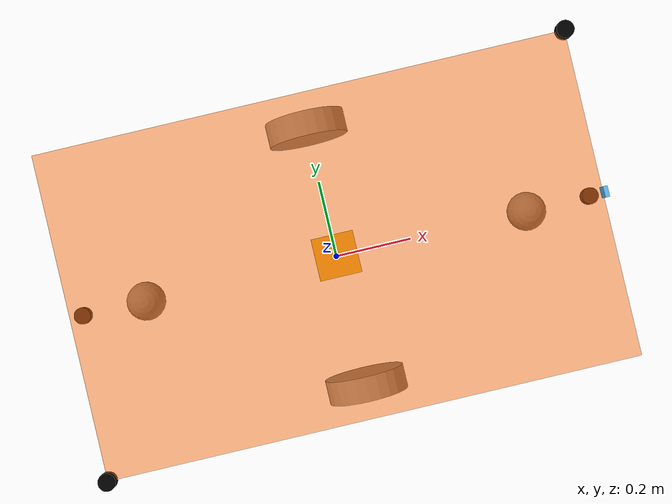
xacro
<?xml version="1.0"?>
<robot name="mycar" xmlns:xacro="http://ros.org/wiki/xacro">
    <!-- xacro中包含内置变量 pi：3.141592653589793 -->
    <xacro:include filename="color.xacro"/>
    <xacro:include filename="inertial_matrix.xacro"/>
    <xacro:include filename="mybase.xacro"/>
    <xacro:include filename="my_laser.xacro"/>
    <xacro:include filename="my_imu.xacro"/>
    <xacro:include filename="my_camera.xacro"/>
    <xacro:include filename="my_ultrasound.xacro"/>
    <!-- 集成运动控制 -->
    <xacro:include filename="move.xacro"/>
</robot>

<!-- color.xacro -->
<robot name="color" xmlns:xacro="http://ros.org/wiki/xacro">
    <!-- Init colour -->
    <material name="black">
        <color rgba="0.0 0.0 0.0 1.0"/>
    </material>

    <material name="dark">
        <color rgba="0.3 0.3 0.3 1.0"/>
    </material>

    <material name="light_black">
        <color rgba="0.4 0.4 0.4 1.0"/>
    </material>

    <material name="blue">
        <color rgba="0.0 0.0 0.8 1.0"/>
    </material>

    <material name="green">
        <color rgba="0.0 0.8 0.0 1.0"/>
    </material>

    <material name="grey">
        <color rgba="0.5 0.5 0.5 1.0"/>
    </material>

    <material name="orange">
        <color rgba="1.0 0.4235 0.0392 0.5"/>
    </material>

    <material name="brown">
        <color rgba="0.8706 0.8118 0.7647 1.0"/>
    </material>

    <material name="red">
        <color rgba="0.8 0.0 0.0 1.0"/>
    </material>

    <material name="white">
        <color rgba="1.0 1.0 1.0 1.0"/>
    </material>

</robot>

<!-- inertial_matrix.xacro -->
<robot name="mycar" xmlns:xacro="http://ros.org/wiki/xacro">
    <!-- Macro for inertia matrix -->
    <xacro:macro name="sphere_inertial_matrix" params="m r">
        <inertial>
            <mass value="${m}" />
            <inertia ixx="${2*m*r*r/5}" ixy="0" ixz="0"
                iyy="${2*m*r*r/5}" iyz="0"
                izz="${2*m*r*r/5}" />
        </inertial>
    </xacro:macro>

    <xacro:macro name="cylinder_inertial_matrix" params="m r h">
        <inertial>
            <mass value="${m}" />
            <inertia ixx="${m*(3*r*r+h*h)/12}" ixy = "0" ixz = "0"
                iyy="${m*(3*r*r+h*h)/12}" iyz = "0"
                izz="${m*r*r/2}" />
        </inertial>
    </xacro:macro>

    <xacro:macro name="Box_inertial_matrix" params="m l w h">
       <inertial>
               <mass value="${m}" />
               <inertia ixx="${m*(h*h + l*l)/12}" ixy = "0" ixz = "0"
                   iyy="${m*(w*w + l*l)/12}" iyz= "0"
                   izz="${m*(w*w + h*h)/12}" />
       </inertial>
   </xacro:macro>
</robot>

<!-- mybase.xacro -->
<robot name="mycar" xmlns:xacro="http://ros.org/wiki/xacro">

    <!-- 地平面的位置   -->
    <link name="base_footprint">
    </link>

    <!-- 小车地盘相关参数 -->
    <xacro:property name="base_length" value="1.21" />
    <xacro:property name="base_width" value="0.738" />

    <xacro:property name="base_depth" value="0.35" />
    <xacro:property name="base_up" value="0.028" /> <!-- 小车地盘离地距离 -->
    <xacro:property name="base_center_up" value="${base_depth/2 + base_up}" /> <!-- 小车中心点离地距离 -->
    <xacro:property name="base_m" value="0.5" /> <!-- 地盘重量 -->

    <!-- 主动轮相关参数 -->
    <xacro:property name="main_wheel_radius" value="0.10"  />
    <xacro:property name="main_wheel_length" value="0.06" />
    <xacro:property name="main_wheel_m" value="0.1" />

    <!-- 从动轮相关参数 -->
    <xacro:property name="sub_wheel_radius" value="0.05"  />
    <xacro:property name="sub_wheel_length" value="0.055" />
    <xacro:property name="sub_wheel_m" value="0.1"  />

    <xacro:property name="wheel_offset_up" value="0.102"  />
    <xacro:property name="main_wheel_offset_left" value="0.039"  />
    <xacro:property name="sub_wheel_offset_left" value="0.091"  />

    <!-- base link 小车中心的位置-->
    <link name="base_link">
        <visual>
            <origin xyz="0 0 0.0" rpy="0 0 0"/>
            <geometry>
                <box size="${base_length} ${base_width} ${base_depth}"></box>
            </geometry>
            <material name="orange"/>
        </visual>
        <!-- 碰撞检测设置 -->
        <collision>
            <origin xyz="0 0 0.0" rpy="0 0 0"/>
            <geometry>
                <box size="${base_length} ${base_width} ${base_depth}"></box>
            </geometry>
        </collision>
        <!-- 惯性矩阵设置 -->
        <xacro:Box_inertial_matrix m="${base_m}" l="${base_length}" w="${base_width}" h="${base_depth}" />
    </link>

    <!-- 使小车距离地面上方0.05M -->
    <joint name="link2footprint" type="fixed">
        <parent link="base_footprint" />
        <child link="base_link" />
        <!-- （base_link距离base_footprint的位置） =  车身一半高度（0.05） + 离地距离（0.05） -->
        <origin xyz="0 0 ${ base_depth / 2 + base_up }" />
    </joint>

    <!-- 主动轮宏实现 -->
    <xacro:macro name="add_main_wheel" params="name type">
        <link name="${name}_wheel">
            <visual>
                <!-- x方向翻转1.57.8弧度，及90度 -->
                <origin xyz="0 0 0" rpy="1.5708 0 0"/>
                <geometry>
                    <cylinder radius="${main_wheel_radius}" length="${main_wheel_length}"></cylinder>
                </geometry>
                <material name="grey"/>
            </visual>
            <!-- 碰撞检测设置 -->
            <collision>
                <origin xyz="0 0 0" rpy="1.5708 0 0"/>
                <geometry>
                    <cylinder radius="${main_wheel_radius}" length="${main_wheel_length}"></cylinder>
                </geometry>
            </collision>
            <!-- 惯性矩阵设置 -->
            <xacro:cylinder_inertial_matrix m="${main_wheel_m}" r="${main_wheel_radius}" h="${main_wheel_length}" />

        </link>

        <joint name="${name}2link" type="continuous">
            <parent link="base_link" />
            <child link="${name}_wheel" />
            <!-- X 方向：无偏移
            Y 方向：车身宽度的一半
            Z 方向：baselink距离地面的高度 - 车轮半径 -->
            <xacro:if value="${type == 'left'}">
                <origin xyz="0 ${base_width/2 - main_wheel_offset_left} ${-(base_center_up - main_wheel_radius)}" />
            </xacro:if>
            <xacro:if value="${type == 'right'}">
                <origin xyz="0 ${-base_width/2 + main_wheel_offset_left} ${-(base_center_up - main_wheel_radius)}" />
            </xacro:if>

            <!-- 绕Y轴转动 -->
            <axis xyz="0 1 0" />
        </joint>
    </xacro:macro>

    <!-- 添加主动轮 -->
    <xacro:add_main_wheel name="left" type="left"/>
    <xacro:add_main_wheel name="right" type="right"/>

    <!-- 万向轮宏实现 -->
    <xacro:macro name="add_sub_wheel" params="name pos">
        <link name="wheel${name}">
            <visual>
                <origin xyz="0 0 0" rpy="0 0 0"/>
                <geometry>
                    <sphere radius="${sub_wheel_radius}"/>
                </geometry>
                <material name="light_black"/>
            </visual>
            <collision>
                <origin xyz="0 0 0" rpy="0 0 0"/>
                <geometry>
                    <sphere radius="${sub_wheel_radius}"/>
                </geometry>
            </collision>
            <!-- 惯性矩阵设置 -->
            <xacro:sphere_inertial_matrix m="${sub_wheel_m}" r="${sub_wheel_radius}" />

        </link>

        <joint name="wheel${name}_joint" type="continuous">
            <parent link="base_link" />
            <child link="wheel${name}" />
            <!-- 左上 -->
            <!-- 右上 -->
            <!-- 左下 -->
            <!-- 右下 -->

            <xacro:if value="${pos == 'z'}">
                <origin xyz="${base_length/2 - wheel_offset_up} 0 ${-(base_center_up - sub_wheel_radius)}" />
            </xacro:if>

            <xacro:if value="${pos == 'c'}">
                <origin xyz="${-base_length/2 + wheel_offset_up} 0 ${-(base_center_up - sub_wheel_radius)}" />
            </xacro:if>

            <axis xyz="0 1 1" />
        </joint>

    </xacro:macro>

    <!-- 四个万向轮实现 -->
    <xacro:add_sub_wheel name="3" pos="z"/>
    <xacro:add_sub_wheel name="4" pos="c"/>

    <gazebo reference="base_link">
        <material>Gazebo/Red</material>
    </gazebo>

</robot>

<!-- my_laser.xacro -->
<robot name="mycar" xmlns:xacro="http://ros.org/wiki/xacro">
    <!-- 雷达相关参数 -->
    <xacro:property name="laser_length" value="0.02" />
    <xacro:property name="laser_radius" value="0.02" />
    <xacro:property name="laser_m" value="0.01" />

    <!-- 雷达宏实现 -->
    <xacro:macro name="add_laser" params="name type">
        <link name="laser_link${name}">
            <visual>
                <origin xyz="0 0 0" rpy="0 0 0"/>
                <geometry>
                    <cylinder length="${laser_length}" radius="${laser_radius}"/>
                </geometry>
                <material name="black"/>
            </visual>
            <!-- 碰撞检测设置 -->
            <collision>
                <origin xyz="0 0 0" rpy="0 0 0"/>
                <geometry>
                    <cylinder length="${laser_length}" radius="${laser_radius}"/>
                </geometry>
            </collision>
            <!-- 惯性矩阵设置 -->
            <xacro:cylinder_inertial_matrix m="${laser_m}" r="${laser_radius}" h="${laser_length}" />

        </link>

        <joint name="laser_joint${name}" type="fixed">
            <parent link="base_link" />
            <child link="laser_link${name}" />

            <xacro:if value="${type == 'left'}">
                <origin xyz="${base_length/2} ${base_width/2} ${base_depth/2}" />
            </xacro:if>
            <xacro:if value="${type == 'right'}">
                <origin xyz="${-base_length/2} ${-base_width/2} ${base_depth/2}" />
            </xacro:if>

            <!-- 设置关节旋转 -->
            <axis xyz="0 0 0" />
        </joint>

    </xacro:macro>

    <!-- 调用宏添加雷达 -->
    <xacro:add_laser name="1" type="left"/>
    <xacro:add_laser name="2" type="right"/>

    <gazebo reference="laser_link1">
        <material>Gazebo/Black</material>
    </gazebo>

    <gazebo reference="laser_link2">
        <material>Gazebo/Black</material>
    </gazebo>

    <gazebo reference="laser_link1">
        <sensor name="laser_sensor" type="ray">
            <always_on>true</always_on>
            <visualize>true</visualize>
            <pose>0 0 0 0 0 0</pose>
            <update_rate>5.5</update_rate>
            <ray>
                <!-- 激光雷达扫描参数设置 -->
                <scan>
                    <horizontal>
                        <!-- 360条光束（扫描密度） -->
                        <samples>360</samples>
                        <!-- 采样,每n条光束有一条测量距离，为了减轻仿真压力 -->
                        <resolution>1</resolution>
                        <!-- 扫描范围，单位弧度 -->
                        <min_angle>${-pi/2 + pi/180*3 }</min_angle>
                        <max_angle>${pi - pi/180*3}</max_angle>
                    </horizontal>
                </scan>
                <!-- 雷达检测范围和精度 -->
                <range>
                    <!-- 10厘米以内的探测不到 -->
                    <min>0.100000</min>
                    <!-- 5米之外的探测不到 -->
                    <max>5.0</max>
                    <!-- 探测精度为1厘米 -->
                    <resolution>0.01</resolution>
                </range>
                <!-- 添加高斯噪音（贴近真实的环境） -->
                <noise>
                    <type>gaussian</type>
                    <mean>0.0</mean>
                    <stddev>0.01</stddev>
                </noise>
            </ray>
            <plugin name="laserscan" filename="libgazebo_ros_ray_sensor.so">
                <ros>
                    <!-- 话题发布 -->
                    <remapping>~/out:=/scan</remapping>
                </ros>
                <!-- 雷达消息类型 -->
                <output_type>sensor_msgs/LaserScan</output_type>
                <!-- 关联到哪个link -->
                <frame_name>laser_link1</frame_name>
            </plugin>
        </sensor>
    </gazebo>

</robot>

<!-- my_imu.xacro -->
<robot name="mycar" xmlns:xacro="http://ros.org/wiki/xacro">
    <link name="imu_link">
        <visual>
            <geometry>
            <box size="0.1 0.1 0.1"/>
            </geometry>
        </visual>

        <collision>
            <geometry>
                <box size="0.1 0.1 0.1"/>
            </geometry>
        </collision>

        <xacro:Box_inertial_matrix m="0.1" l="0.1" w="0.1" h="0.1"/>
    </link>

    <joint name="imu_joint" type="fixed">
        <parent link="base_link"/>
        <child link="imu_link"/>
        <origin xyz="0 0 0.01"/>
    </joint>

    <gazebo reference="imu_link">
        <sensor name="imu_sensor" type="imu">
            <plugin filename="libgazebo_ros_imu_sensor.so" name="imu_plugin">
                <ros>
                    <namespace>/demo</namespace>
                    <remapping>~/out:=imu</remapping>
                </ros>
                <initial_orientation_as_reference>false</initial_orientation_as_reference>
            </plugin>
            <always_on>true</always_on>
            <update_rate>100</update_rate>
            <visualize>true</visualize>
            <imu>
                <angular_velocity>
                    <x>
                    <noise type="gaussian">
                        <mean>0.0</mean>
                        <stddev>2e-4</stddev>
                        <bias_mean>0.0000075</bias_mean>
                        <bias_stddev>0.0000008</bias_stddev>
                    </noise>
                    </x>
                    <y>
                    <noise type="gaussian">
                        <mean>0.0</mean>
                        <stddev>2e-4</stddev>
                        <bias_mean>0.0000075</bias_mean>
                        <bias_stddev>0.0000008</bias_stddev>
                    </noise>
                    </y>
                    <z>
                    <noise type="gaussian">
                        <mean>0.0</mean>
                        <stddev>2e-4</stddev>
                        <bias_mean>0.0000075</bias_mean>
                        <bias_stddev>0.0000008</bias_stddev>
                    </noise>
                    </z>
                </angular_velocity>
                <linear_acceleration>
                    <x>
                    <noise type="gaussian">
                        <mean>0.0</mean>
                        <stddev>1.7e-2</stddev>
                        <bias_mean>0.1</bias_mean>
                        <bias_stddev>0.001</bias_stddev>
                    </noise>
                    </x>
                    <y>
                    <noise type="gaussian">
                        <mean>0.0</mean>
                        <stddev>1.7e-2</stddev>
                        <bias_mean>0.1</bias_mean>
                        <bias_stddev>0.001</bias_stddev>
                    </noise>
                    </y>
                    <z>
                    <noise type="gaussian">
                        <mean>0.0</mean>
                        <stddev>1.7e-2</stddev>
                        <bias_mean>0.1</bias_mean>
                        <bias_stddev>0.001</bias_stddev>
                    </noise>
                    </z>
                </linear_acceleration>
            </imu>
        </sensor>
    </gazebo>

</robot>

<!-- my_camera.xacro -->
<robot name="mycar" xmlns:xacro="http://ros.org/wiki/xacro">

    <!-- 摄像头属性 -->
    <xacro:property name="camera_length" value="0.01" /> <!-- 摄像头长度(x) -->
    <xacro:property name="camera_width" value="0.025" /> <!-- 摄像头宽度(y) -->
    <xacro:property name="camera_height" value="0.025" /> <!-- 摄像头高度(z) -->
    <xacro:property name="camera_x" value="${base_length / 2}" /> <!-- 摄像头安装的x坐标 -->
    <xacro:property name="camera_y" value="0.0" /> <!-- 摄像头安装的y坐标 -->
    <xacro:property name="camera_z" value="${base_depth / 2 + camera_height / 2}" /> <!-- 摄像头安装的z坐标:底盘高度 / 2 + 摄像头高度 / 2  -->

    <xacro:property name="camera_m" value="0.01" /> <!-- 摄像头质量 -->

    <link name="camera_link">
        <visual>
            <geometry>
                <box size="${camera_length} ${camera_width} ${camera_height}" />
            </geometry>
            <origin xyz="0.0 0.0 0.0" rpy="0.0 0.0 0.0" />
        </visual>

        <collision>
            <geometry>
                <box size="${camera_length} ${camera_width} ${camera_height}" />
            </geometry>
            <origin xyz="0.0 0.0 0.0" rpy="0.0 0.0 0.0" />
        </collision>

         <xacro:Box_inertial_matrix m="${camera_m}" l="${camera_length}" w="${camera_width}" h="${camera_height}" />
    </link>

    <joint name="camera_joint" type="fixed">
        <parent link="base_link" />
        <child link="camera_link" />
        <origin xyz="${camera_x} ${camera_y} ${camera_z}" />
    </joint>

    <gazebo reference="camera_link">
        <sensor type="depth" name="camera_sensor">
          <!-- Set always_on only sensor, not on plugin -->
          <always_on>0</always_on>

          <!-- Set update_rate only sensor, not on plugin -->
          <update_rate>1</update_rate>

          <camera name="my_camera_sensor">
            <distortion>
              <k1>0.1</k1>
              <k2>0.2</k2>
              <k3>0.3</k3>
              <p1>0.4</p1>
              <p2>0.5</p2>
              <center>0.5 0.5</center>
            </distortion>
          </camera>
          <plugin name="camera_plugin" filename="libgazebo_ros_camera.so">
            <ros>
              <namespace>custom_ns</namespace>
              <argument>custom_camera/image_raw:=custom_camera/custom_image</argument>
              <argument>custom_camera/image_depth:=custom_camera/custom_image_depth</argument>
              <argument>custom_camera/camera_info:=custom_camera/custom_info_raw</argument>
              <argument>custom_camera/camera_info_depth:=custom_camera/custom_info_depth</argument>
              <argument>custom_camera/points:=custom_camera/custom_points</argument>
            </ros>

            <!-- Set camera name. If empty, defaults to sensor name (i.e. "sensor_name") -->

            <!-- Set TF frame name. If empty, defaults to link name (i.e. "link_name") -->

            <hack_baseline>0.07</hack_baseline>

            <!-- No need to repeat distortion parameters or to set autoDistortion -->

             <min_depth>0.001</min_depth>
             <max_depth>300.0</max_depth>
          </plugin>
        </sensor>
    </gazebo>

</robot>

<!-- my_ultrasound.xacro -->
<robot name="mycar" xmlns:xacro="http://ros.org/wiki/xacro">
    <!-- 超声波相关参数 -->
    <xacro:property name="ultra_length" value="0.02" />
    <xacro:property name="ultra_radius" value="0.02" />
    <xacro:property name="ultra_m" value="0.01" />

    <!-- 超声波宏实现 -->
    <xacro:macro name="add_ultra" params="name type">
        <link name="ultra_link${name}">
            <visual>
                <origin xyz="0 0 0" rpy="0 0 0"/>
                <geometry>
                    <cylinder length="${ultra_length}" radius="${ultra_radius}"/>
                </geometry>
                <material name="black"/>
            </visual>
            <!-- 碰撞检测设置 -->
            <collision>
                <origin xyz="0 0 0" rpy="0 0 0"/>
                <geometry>
                    <cylinder length="${ultra_length}" radius="${ultra_radius}"/>
                </geometry>
            </collision>
            <!-- 惯性矩阵设置 -->
            <xacro:cylinder_inertial_matrix m="${ultra_m}" r="${ultra_radius}" h="${ultra_length}" />

        </link>

        <joint name="ultra_joint${name}" type="fixed">
            <parent link="base_link" />
            <child link="ultra_link${name}" />

            <xacro:if value="${type == 'head'}">
                <origin xyz="${base_length/2 + ultra_radius} 0 0" />
            </xacro:if>
            <xacro:if value="${type == 'tail'}">
                <origin xyz="${-base_length/2 - ultra_radius} 0 0" />
            </xacro:if>

            <!-- 设置关节旋转 -->
            <axis xyz="0 0 0" />
        </joint>

    </xacro:macro>

    <!-- 调用宏添加雷达(type这个参数不能是数字) -->
    <xacro:add_ultra name="1" type="head"/>
    <xacro:add_ultra name="2" type="tail"/>

    <!-- ～～～～～～～～～～～～～gazebo～～～～～～～～～～～～～～～～～ -->

    <xacro:macro name="add_ultra_gazebo" params="name type">
        <gazebo reference="ultra_link${name}">
            <material>Gazebo/Green</material>
        </gazebo>

        <gazebo reference="ultra_link${name}">
            <sensor type="ray" name="range_sensor${name}">
                <always_on>true</always_on>
                <visualize>true</visualize>
                <ray>
                    <scan>
                        <horizontal>
                            <samples>10</samples>
                            <resolution>1</resolution>

                            <xacro:if value="${type == 'head'}">
                                <min_angle>-0.087</min_angle>
                                <max_angle>0.087</max_angle>
                            </xacro:if>
                            <xacro:if value="${type == 'tail'}">
                                <min_angle>${-0.087 + pi}</min_angle>
                                <max_angle>${0.087 + pi}</max_angle>
                            </xacro:if>

                        </horizontal>
                        <vertical>
                            <samples>10</samples>
                            <resolution>1</resolution>
                            <min_angle>-0.087</min_angle>
                            <max_angle>0.087</max_angle>
                        </vertical>
                    </scan>
                    <range>
                        <min>0.10</min>
                        <max>5.0</max>
                        <resolution>0.01</resolution>
                    </range>
                    <!-- Using gazebo's noise instead of plugin's -->
                    <noise>
                        <type>gaussian</type>
                        <mean>0.0</mean>
                        <stddev>0.01</stddev>
                    </noise>
                </ray>
                <!-- Using gazebo's update rate instead of plugin's -->
                <update_rate>1</update_rate>
                <plugin name="ultra_range_plugin${name}" filename="libgazebo_ros_ray_sensor.so">
                    <!-- Change namespace and output topic so published topic is /rrbot/laser/scan -->
                    <ros>
                        <remapping>~/out:=/range${name}</remapping>
                    </ros>
                    <!-- Set output to sensor_msgs/Range to get same output type as gazebo_ros_range -->
                    <output_type>sensor_msgs/Range</output_type>
                    <!-- 关联到哪个link -->
                    <frame_name>ultra_link${name}</frame_name>
                </plugin>
            </sensor>
        </gazebo>

    </xacro:macro>

    <xacro:add_ultra_gazebo name="1" type="head"/>
    <xacro:add_ultra_gazebo name="2" type="tail"/>

</robot>
